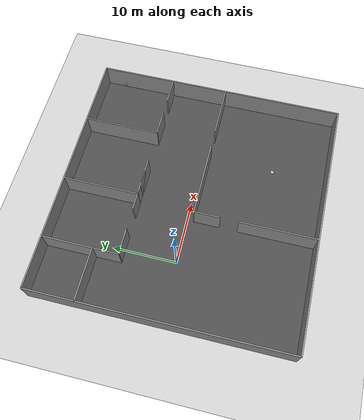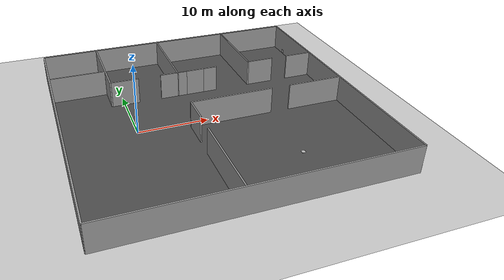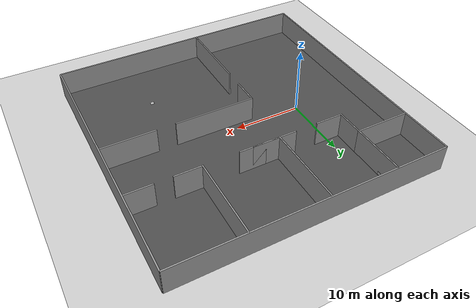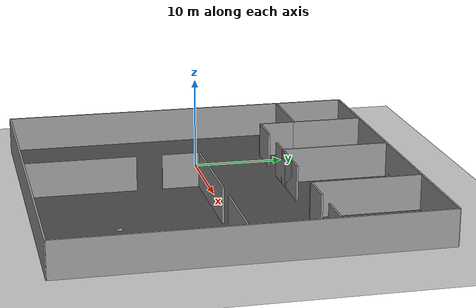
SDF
<sdf version="1.4">
 <world name="default">
  <scene><shadows>0</shadows></scene>
  <physics type="ode">
   <gravity>0 0 -9.81</gravity>
   <ode>
    <solver><type>quick</type><iters>20</iters><sor>1.0</sor></solver>
    <constraints>
     <cfm>0.0</cfm>
     <erp>0.2</erp>
     <contact_max_correcting_vel>100.0</contact_max_correcting_vel>
     <contact_surface_layer>0.0</contact_surface_layer>
    </constraints>
   </ode>
   <real_time_update_rate>1000</real_time_update_rate>
   <max_step_size>0.001</max_step_size>
  </physics>
  <include><uri>model://sun</uri></include>
  <include><uri>model://ground_plane</uri></include>
  <include><uri>model://floor</uri><name>floor</name><pose>10 0 0 0 0 0</pose></include>
  <include><uri>model://w1</uri><name>w1_bottom</name><pose>-10 0.0 0.0 0 0.0 -1.57</pose></include>
  <include><uri>model://w1</uri><name>w1_left</name><pose>10 20 0.0 0 0.0 0.0</pose></include>
  <include><uri>model://w1</uri><name>w1_top</name><pose>30 0.0 0.0 0 0.0 -1.57</pose></include>
  <include><uri>model://w1</uri><name>w1_right</name><pose>10 -20 0.0 0 0.0 0.0</pose></include>
  <include><uri>model://w3</uri><name>w3_no_room_1</name><pose>-6 12.1 0.0 0 0.0 0.0</pose></include>
  <include><uri>model://w3</uri><name>w3_no_room_2</name><pose>-1.9 16 0.0 0 0.0 1.57</pose></include>
  <include><uri>model://w2</uri><name>w3_room_1_1</name><pose>-1.9 10 0.0 0 0.0 1.57</pose></include>
  <include><uri>model://w2</uri><name>w3_room_1_2</name><pose>0.18 8.1 0.0 0 0.0 0.0</pose></include>
  <include><uri>model://w2</uri><name>w3_room_1_3</name><pose>7.5 8.1 0.0 0 0.0 0.0</pose></include>
  <include><uri>model://w4</uri><name>w4_room_1_3</name><pose>8.1 14 0.0 0 0.0 1.57</pose></include>
  <include><uri>model://w2</uri><name>w4_room_2_1</name><pose>10.17 8.11 0.0 0 0.0 0.0</pose></include>
  <include><uri>model://w2</uri><name>w4_room_2_2</name><pose>12.17 8.11 0.0 0 0.0 0.0</pose></include>
  <include><uri>model://w4</uri><name>w4_room_2_3</name><pose>19.4 14 0.0 0 0.0 1.57</pose></include>
  <include><uri>model://w2</uri><name>w4_room_3_1</name><pose>21.4 8.11 0.0 0 0.0 0.0</pose></include>
  <include><uri>model://w2</uri><name>w4_room_3_2</name><pose>27.9 8.11 0.0 0 0.0 0.0</pose></include>
  <include><uri>model://w4</uri><name>w4_warehouse_1</name><pose>7.2 -13.9 0.0 0 0.0 1.57</pose></include>
  <include><uri>model://w4</uri><name>w4_warehouse_2</name><pose>13.14 -1.0 0.0 0 0.0 0.0</pose></include>
  <include><uri>model://w3</uri><name>w4_warehouse_3</name><pose>25.9 -1.0 0.0 0 0.0 0.0</pose></include>
  <include><uri>model://w2</uri><name>w4_warehouse_4</name><pose>7.24 -3.1 0.0 0 0.0 1.57</pose></include>
  <include><uri>model://marker_01</uri><pose>29.886188 16.92 0.4 1.5707 -1.5707 -1.5707</pose></include>
  <include><uri>model://marker_02</uri><pose>9.5 19.895 0.4 0 1.5707 1.5707</pose></include>
  <include><uri>model://marker_03</uri><pose>-1.78 17.24 0.4 -1.5707 1.5707 1.5707</pose></include>
  <include><uri>model://marker_900</uri><pose>18.8 -11.5 0.054 0 0 3.14</pose></include>
 </world>
</sdf>

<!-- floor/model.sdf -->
<sdf version="1.5">
  <model name="asphalt_plane">
    <static>true</static>
    <link name="link">
      <collision name="collision">
        <geometry>
          <box>
            <size>200 200 .1</size>
          </box>
        </geometry>
      </collision>
      <visual name="visual">
        <cast_shadows>false</cast_shadows>
        <geometry>
          <box>
            <size>40 40 .1</size>
          </box>
        </geometry>
        <material>
          <script>
            <uri>model://floor/materials/scripts</uri>
            <uri>model://floor/materials/textures</uri>
            <name>vrc/asphalt</name>
          </script>
        </material>
      </visual>
    </link>
  </model>
</sdf>

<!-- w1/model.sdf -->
<sdf version="1.5">
  <model name="grey_wall">
    <static>true</static>
    <link name="link">
      <pose>0 0 1.4 0 0 0</pose>
      <collision name="collision">
        <geometry>
          <box>
            <size>40 0.2 5</size>
          </box>
        </geometry>
      </collision>
      <visual name="visual">
        <cast_shadows>false</cast_shadows>
        <geometry>
          <box>
            <size>40 0.2 5</size>
          </box>
        </geometry>
        <material>
          <script>
            <uri>model://w1/materials/scripts</uri>
            <uri>model://w1/materials/textures</uri>
            <name>vrc/grey_wall</name>
          </script>
        </material>
      </visual>
    </link>
  </model>
</sdf>

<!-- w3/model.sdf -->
<sdf version="1.5">
  <model name="grey_wall">
    <static>true</static>
    <link name="link">
      <pose>0 0 1.4 0 0 0</pose>
      <collision name="collision">
        <geometry>
          <box>
            <size>8 0.2 5</size>
          </box>
        </geometry>
      </collision>
      <visual name="visual">
        <cast_shadows>false</cast_shadows>
        <geometry>
          <box>
            <size>8 0.2 5</size>
          </box>
        </geometry>
        <material>
          <script>
            <uri>model://w3/materials/scripts</uri>
            <uri>model://w3/materials/textures</uri>
            <name>vrc/grey_wall</name>
          </script>
        </material>
      </visual>
    </link>
  </model>
</sdf>

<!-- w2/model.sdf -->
<sdf version="1.5">
  <model name="grey_wall">
    <static>true</static>
    <link name="link">
      <pose>0 0 1.4 0 0 0</pose>
      <collision name="collision">
        <geometry>
          <box>
            <size>4 0.2 5</size>
          </box>
        </geometry>
      </collision>
      <visual name="visual">
        <cast_shadows>false</cast_shadows>
        <geometry>
          <box>
            <size>4 0.2 5</size>
          </box>
        </geometry>
        <material>
          <script>
            <uri>model://w2/materials/scripts</uri>
            <uri>model://w2/materials/textures</uri>
            <name>vrc/grey_wall</name>
          </script>
        </material>
      </visual>
    </link>
  </model>
</sdf>

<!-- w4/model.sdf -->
<sdf version="1.5">
  <model name="grey_wall">
    <static>true</static>
    <link name="link">
      <pose>0 0 1.4 0 0 0</pose>
      <collision name="collision">
        <geometry>
          <box>
            <size>12 0.2 5</size>
          </box>
        </geometry>
      </collision>
      <visual name="visual">
        <cast_shadows>false</cast_shadows>
        <geometry>
          <box>
            <size>12 0.2 5</size>
          </box>
        </geometry>
        <material>
          <script>
            <uri>model://w4/materials/scripts</uri>
            <uri>model://w4/materials/textures</uri>
            <name>vrc/grey_wall</name>
          </script>
        </material>
      </visual>
    </link>
  </model>
</sdf>

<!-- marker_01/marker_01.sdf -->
<sdf version="1.4">
  <model name="marker_01">
    <static>1</static>
    <link name="marker">
      <gravity>false</gravity>
      <visual name="visual">
        <geometry>
          <box>
            <size>0.54 0.54 0.006</size>
            <!-- SIZE OF THE MARKER + MARGIN -->
          </box>
        </geometry>
        <material>
          <script>
	    <uri>model://marker_01/material/scripts</uri>
	    <uri>model://marker_01/material/textures</uri>
            <name>Aruco/marker_01</name>
          </script>
        </material>
      </visual>
      <collision name="collision">
        <geometry>
          <box>
            <size>0.54 0.54 0.12</size>
            <!-- SIZE OF THE MARKER + MARGIN -->
          </box>
        </geometry>
      </collision>
    </link>
  </model>
</sdf>

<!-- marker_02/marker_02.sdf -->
<sdf version="1.4">
  <model name="marker_02">
    <static>1</static>
    <link name="marker">
      <gravity>false</gravity>
      <visual name="visual">
        <geometry>
          <box>
            <size>0.54 0.54 0.006</size>
            <!-- SIZE OF THE MARKER + MARGIN -->
          </box>
        </geometry>
        <material>
          <script>
	    <uri>model://marker_02/material/scripts</uri>
	    <uri>model://marker_02/material/textures</uri>
            <name>Aruco/marker_02</name>
          </script>
        </material>
      </visual>
      <collision name="collision">
        <geometry>
          <box>
            <size>0.54 0.54 0.12</size>
            <!-- SIZE OF THE MARKER + MARGIN -->
          </box>
        </geometry>
      </collision>
    </link>
  </model>
</sdf>

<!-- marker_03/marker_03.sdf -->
<sdf version="1.4">
  <model name="marker_03">
    <static>1</static>
    <link name="marker">
      <gravity>false</gravity>
      <visual name="visual">
        <geometry>
          <box>
             <size>0.54 0.54 0.006</size>
            <!-- SIZE OF THE MARKER + MARGIN -->
          </box>
        </geometry>
        <material>
          <script>
	    <uri>model://marker_03/material/scripts</uri>
	    <uri>model://marker_03/material/textures</uri>
            <name>Aruco/marker_03</name>
          </script>
        </material>
      </visual>
      <collision name="collision">
        <geometry>
          <box>
            <size>0.54 0.54 0.12</size>
            <!-- SIZE OF THE MARKER + MARGIN -->
          </box>
        </geometry>
      </collision>
    </link>
  </model>
</sdf>

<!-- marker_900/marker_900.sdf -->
<sdf version="1.4">
  <model name="marker_900">
    <static>1</static>
    <link name="marker">
      <gravity>false</gravity>
      <visual name="visual">
        <geometry>
          <box>
             <size>0.54 0.54 0.006</size>
            <!-- SIZE OF THE MARKER + MARGIN -->
          </box>
        </geometry>
        <material>
          <script>
	    <uri>model://marker_900/material/scripts</uri>
	    <uri>model://marker_900/material/textures</uri>
            <name>Aruco/marker_900</name>
          </script>
        </material>
      </visual>
      <collision name="collision">
        <geometry>
          <box>
            <size>0.54 0.54 0.12</size>
            <!-- SIZE OF THE MARKER + MARGIN -->
          </box>
        </geometry>
      </collision>
    </link>
  </model>
</sdf>
